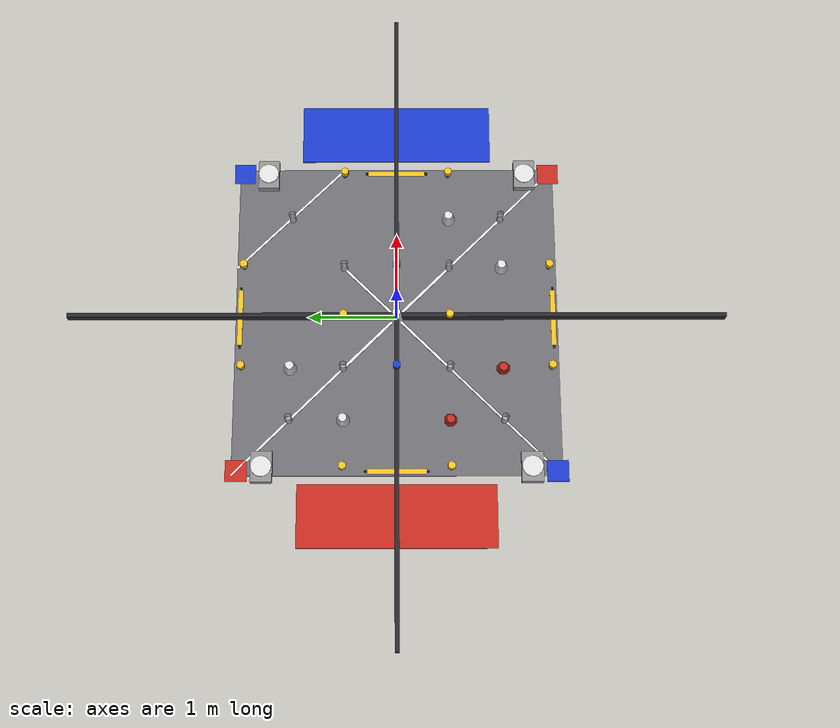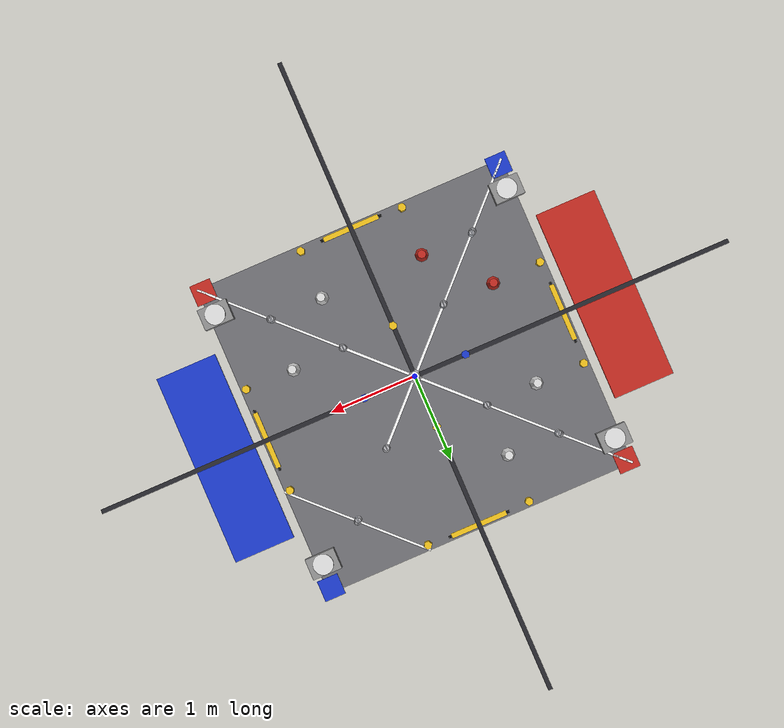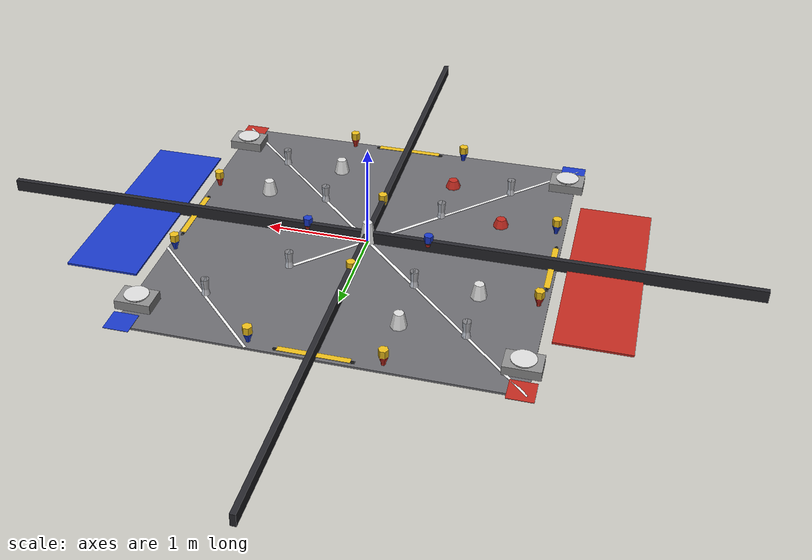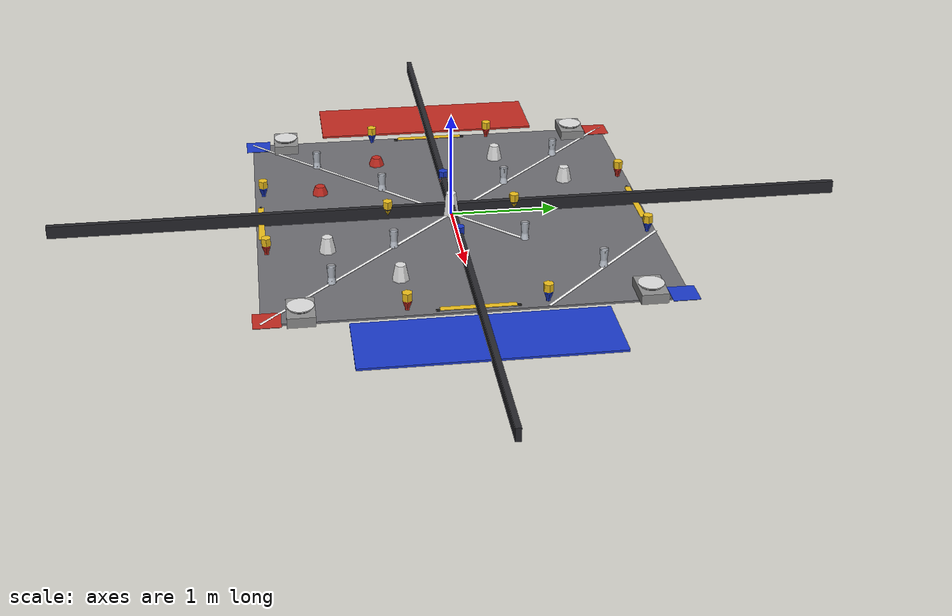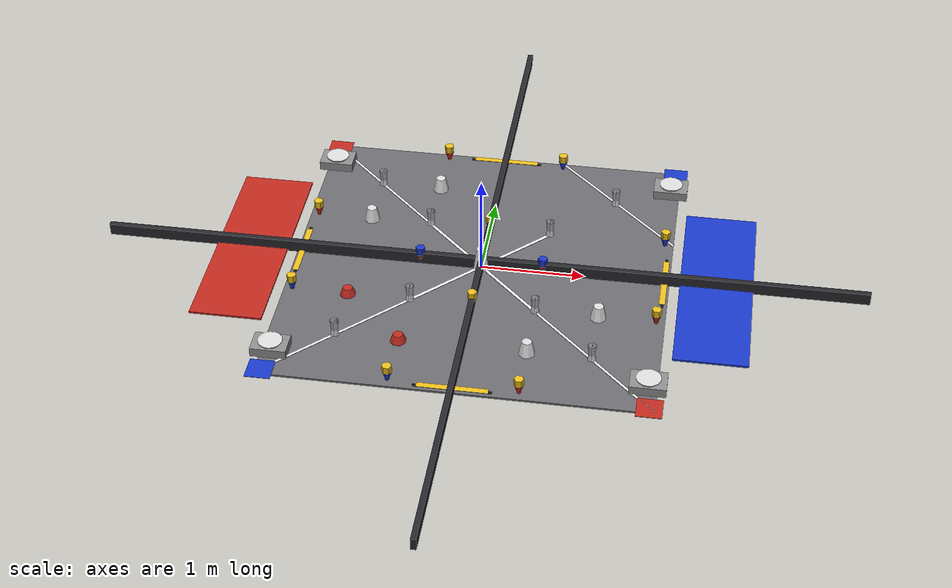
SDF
<sdf version="1.7">
 <world name="override">
  <scene>
   <ambient>0.45 0.45 0.5 1</ambient>
   <background>0.2 0.2 0.25 1</background>
   <shadows>true</shadows>
   <sky><clouds><speed>1</speed></clouds></sky>
  </scene>
  <light name="sun" type="directional">
   <pose>0 0 3 0 0 0</pose>
   <diffuse>0.9 0.9 0.9 1</diffuse>
   <specular>0.2 0.2 0.2 1</specular>
   <direction>-0.5 0.1 -1</direction>
  </light>
  <include><name>override-field</name><uri>model://override-field</uri></include>
  <include><name>goal_center</name><uri>model://goal-center</uri></include>
  <include><name>goal_neutral_1</name><uri>model://goal-neutral</uri><pose>-0.6 1.2 0 0 0 0</pose></include>
  <include><name>goal_neutral_2</name><uri>model://goal-neutral</uri><pose>-1.2 0.6 0 0 0 0</pose></include>
  <include><name>goal_neutral_3</name><uri>model://goal-neutral</uri><pose>1.2 -0.6 0 0 0 0</pose></include>
  <include><name>goal_neutral_4</name><uri>model://goal-neutral</uri><pose>0.6 -1.2 0 0 0 0</pose></include>
  <include><name>goal_red_1</name><uri>model://goal-alliance-red</uri><pose>-1.2 -0.6 0 0 0 0</pose></include>
  <include><name>goal_red_2</name><uri>model://goal-alliance-red</uri><pose>-0.6 -1.2 0 0 0 0</pose></include>
  <include><name>toggle_1</name><uri>model://toggle</uri><pose>0 1.78 0 0 0 0</pose></include>
  <include><name>toggle_2</name><uri>model://toggle</uri><pose>1.78 0 0 0 0 1.5708</pose></include>
  <include><name>toggle_3</name><uri>model://toggle</uri><pose>0 -1.78 0 0 0 0</pose></include>
  <include><name>toggle_4</name><uri>model://toggle</uri><pose>-1.78 0 0 0 0 1.5708</pose></include>
  <include><name>loader_1</name><uri>model://loader</uri><pose>-1.74 1.49 0 0 0 0</pose></include>
  <include><name>loader_2</name><uri>model://loader</uri><pose>-1.74 -1.49 0 0 0 0</pose></include>
  <include><name>loader_3</name><uri>model://loader</uri><pose>1.74 1.49 0 0 0 0</pose></include>
  <include><name>loader_4</name><uri>model://loader</uri><pose>1.74 -1.49 0 0 0 0</pose></include>
  <include><name>pin_ry_1</name><uri>model://pin-ry</uri><pose>-0.6 1.745 0.01 0 0 0</pose></include>
  <include><name>pin_by_1</name><uri>model://pin-by</uri><pose>0.6 1.745 0.01 0 0 0</pose></include>
  <include><name>cup_1</name><uri>model://cup</uri><pose>-1.2 1.2 0.01 0 0 0</pose></include>
  <include><name>cup_2</name><uri>model://cup</uri><pose>1.2 1.2 0.01 0 0 0</pose></include>
  <include><name>pin_ry_2</name><uri>model://pin-ry</uri><pose>-1.745 0.6 0.01 0 0 0</pose></include>
  <include><name>cup_3</name><uri>model://cup</uri><pose>-0.6 0.6 0.01 0 0 0</pose></include>
  <include><name>pin_yy_1</name><uri>model://pin-yy</uri><pose>0 0.6 0.01 0 0 0</pose></include>
  <include><name>cup_4</name><uri>model://cup</uri><pose>0.6 0.6 0.01 0 0 0</pose></include>
  <include><name>pin_by_2</name><uri>model://pin-by</uri><pose>1.745 0.6 0.01 0 0 0</pose></include>
  <include><name>pin_rb_1</name><uri>model://pin-rb</uri><pose>-0.6 0 0.01 0 0 0</pose></include>
  <include><name>pin_rb_2</name><uri>model://pin-rb</uri><pose>0.6 0 0.01 0 0 0</pose></include>
  <include><name>pin_by_3</name><uri>model://pin-by</uri><pose>-1.745 -0.6 0.01 0 0 0</pose></include>
  <include><name>cup_5</name><uri>model://cup</uri><pose>-0.6 -0.6 0.01 0 0 0</pose></include>
  <include><name>pin_yy_2</name><uri>model://pin-yy</uri><pose>0 -0.6 0.01 0 0 0</pose></include>
  <include><name>cup_6</name><uri>model://cup</uri><pose>0.6 -0.6 0.01 0 0 0</pose></include>
  <include><name>pin_ry_3</name><uri>model://pin-ry</uri><pose>1.745 -0.6 0.01 0 0 0</pose></include>
  <include><name>cup_7</name><uri>model://cup</uri><pose>-1.2 -1.2 0.01 0 0 0</pose></include>
  <include><name>cup_8</name><uri>model://cup</uri><pose>1.2 -1.2 0.01 0 0 0</pose></include>
  <include><name>pin_by_4</name><uri>model://pin-by</uri><pose>-0.6 -1.745 0.01 0 0 0</pose></include>
  <include><name>pin_ry_4</name><uri>model://pin-ry</uri><pose>0.6 -1.745 0.01 0 0 0</pose></include>
 </world>
</sdf>

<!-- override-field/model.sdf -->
<sdf version="1.7">
  <model name="override-field">
    <static>true</static>
    <link name="body">
      <pose>0 0 0 0 0 0</pose>
            <visual name="v_0_0">
        <pose>0 0 -0.01 0.0 0.0 0.0</pose>
        <geometry><box><size>3.6576 3.6576 0.02</size></box></geometry>
        <material>
        <ambient>0.42 0.42 0.44 1</ambient>
        <diffuse>0.42 0.42 0.44 1</diffuse>
        <specular>0.1 0.1 0.1 1.0</specular>
        <emissive>0 0 0 1</emissive>
      </material>
      </visual>
      <collision name="c_0_0">
        <pose>0 0 -0.01 0.0 0.0 0.0</pose>
        <geometry><box><size>3.6576 3.6576 0.02</size></box></geometry>
        <surface><friction><ode><mu>0.8</mu><mu2>0.8</mu2></ode></friction></surface>
      </collision>

      <visual name="v_-1.8538_0">
        <pose>-1.8538 0 0.06 0.0 0.0 0.0</pose>
        <geometry><box><size>3.7576 0.05 0.12</size></box></geometry>
        <material>
        <ambient>0.15 0.15 0.17 1</ambient>
        <diffuse>0.15 0.15 0.17 1</diffuse>
        <specular>0.1 0.1 0.1 1.0</specular>
        <emissive>0 0 0 1</emissive>
      </material>
      </visual>
      <collision name="c_-1.8538_0">
        <pose>-1.8538 0 0.06 0.0 0.0 0.0</pose>
        <geometry><box><size>3.7576 0.05 0.12</size></box></geometry>
        <surface><friction><ode><mu>0.8</mu><mu2>0.8</mu2></ode></friction></surface>
      </collision>

      <visual name="v_0_-1.8538">
        <pose>0 -1.8538 0.06 0.0 0.0 0.0</pose>
        <geometry><box><size>0.05 3.7576 0.12</size></box></geometry>
        <material>
        <ambient>0.15 0.15 0.17 1</ambient>
        <diffuse>0.15 0.15 0.17 1</diffuse>
        <specular>0.1 0.1 0.1 1.0</specular>
        <emissive>0 0 0 1</emissive>
      </material>
      </visual>
      <collision name="c_0_-1.8538">
        <pose>0 -1.8538 0.06 0.0 0.0 0.0</pose>
        <geometry><box><size>0.05 3.7576 0.12</size></box></geometry>
        <surface><friction><ode><mu>0.8</mu><mu2>0.8</mu2></ode></friction></surface>
      </collision>

      <visual name="v_1.8538_0">
        <pose>1.8538 0 0.06 0.0 0.0 0.0</pose>
        <geometry><box><size>3.7576 0.05 0.12</size></box></geometry>
        <material>
        <ambient>0.15 0.15 0.17 1</ambient>
        <diffuse>0.15 0.15 0.17 1</diffuse>
        <specular>0.1 0.1 0.1 1.0</specular>
        <emissive>0 0 0 1</emissive>
      </material>
      </visual>
      <collision name="c_1.8538_0">
        <pose>1.8538 0 0.06 0.0 0.0 0.0</pose>
        <geometry><box><size>3.7576 0.05 0.12</size></box></geometry>
        <surface><friction><ode><mu>0.8</mu><mu2>0.8</mu2></ode></friction></surface>
      </collision>

      <visual name="v_0_1.8538">
        <pose>0 1.8538 0.06 0.0 0.0 0.0</pose>
        <geometry><box><size>0.05 3.7576 0.12</size></box></geometry>
        <material>
        <ambient>0.15 0.15 0.17 1</ambient>
        <diffuse>0.15 0.15 0.17 1</diffuse>
        <specular>0.1 0.1 0.1 1.0</specular>
        <emissive>0 0 0 1</emissive>
      </material>
      </visual>
      <collision name="c_0_1.8538">
        <pose>0 1.8538 0.06 0.0 0.0 0.0</pose>
        <geometry><box><size>0.05 3.7576 0.12</size></box></geometry>
        <surface><friction><ode><mu>0.8</mu><mu2>0.8</mu2></ode></friction></surface>
      </collision>

      <visual name="v_-2.2788_0">
        <pose>-2.2788 0 0.01 0.0 0.0 0.0</pose>
        <geometry><box><size>0.7 2.2 0.02</size></box></geometry>
        <material>
        <ambient>0.75 0.16 0.12 1</ambient>
        <diffuse>0.75 0.16 0.12 1</diffuse>
        <specular>0.1 0.1 0.1 1.0</specular>
        <emissive>0 0 0 1</emissive>
      </material>
      </visual>
      <collision name="c_-2.2788_0">
        <pose>-2.2788 0 0.01 0.0 0.0 0.0</pose>
        <geometry><box><size>0.7 2.2 0.02</size></box></geometry>
        <surface><friction><ode><mu>0.8</mu><mu2>0.8</mu2></ode></friction></surface>
      </collision>

      <visual name="v_2.2788_0">
        <pose>2.2788 0 0.01 0.0 0.0 0.0</pose>
        <geometry><box><size>0.7 2.2 0.02</size></box></geometry>
        <material>
        <ambient>0.1 0.22 0.78 1</ambient>
        <diffuse>0.1 0.22 0.78 1</diffuse>
        <specular>0.1 0.1 0.1 1.0</specular>
        <emissive>0 0 0 1</emissive>
      </material>
      </visual>
      <collision name="c_2.2788_0">
        <pose>2.2788 0 0.01 0.0 0.0 0.0</pose>
        <geometry><box><size>0.7 2.2 0.02</size></box></geometry>
        <surface><friction><ode><mu>0.8</mu><mu2>0.8</mu2></ode></friction></surface>
      </collision>

      <visual name="tape_0.3_0.3">
        <pose>0.3 0.3 0.005 0 0 0.7854</pose>
        <geometry><box><size>0.848528137423857 0.03 0.005</size></box></geometry>
        <material>
        <ambient>0.96 0.96 0.96 1</ambient>
        <diffuse>0.96 0.96 0.96 1</diffuse>
        <specular>0.1 0.1 0.1 1.0</specular>
        <emissive>0.05 0.05 0.05 1</emissive>
      </material>
      </visual>

      <visual name="tape_-0.3_0.3">
        <pose>-0.3 0.3 0.005 0 0 -0.7854</pose>
        <geometry><box><size>0.848528137423857 0.03 0.005</size></box></geometry>
        <material>
        <ambient>0.96 0.96 0.96 1</ambient>
        <diffuse>0.96 0.96 0.96 1</diffuse>
        <specular>0.1 0.1 0.1 1.0</specular>
        <emissive>0.05 0.05 0.05 1</emissive>
      </material>
      </visual>

      <visual name="tape_-0.3_-0.3">
        <pose>-0.3 -0.3 0.005 0 0 0.7854</pose>
        <geometry><box><size>0.848528137423857 0.03 0.005</size></box></geometry>
        <material>
        <ambient>0.96 0.96 0.96 1</ambient>
        <diffuse>0.96 0.96 0.96 1</diffuse>
        <specular>0.1 0.1 0.1 1.0</specular>
        <emissive>0.05 0.05 0.05 1</emissive>
      </material>
      </visual>

      <visual name="tape_0.3_-0.3">
        <pose>0.3 -0.3 0.005 0 0 -0.7854</pose>
        <geometry><box><size>0.848528137423857 0.03 0.005</size></box></geometry>
        <material>
        <ambient>0.96 0.96 0.96 1</ambient>
        <diffuse>0.96 0.96 0.96 1</diffuse>
        <specular>0.1 0.1 0.1 1.0</specular>
        <emissive>0.05 0.05 0.05 1</emissive>
      </material>
      </visual>

      <visual name="tape_-1.2144_1.2144">
        <pose>-1.2144 1.2144 0.005 0 0 -0.7854</pose>
        <geometry><box><size>1.7377856254440596 0.025 0.005</size></box></geometry>
        <material>
        <ambient>0.96 0.96 0.96 1</ambient>
        <diffuse>0.96 0.96 0.96 1</diffuse>
        <specular>0.1 0.1 0.1 1.0</specular>
        <emissive>0.05 0.05 0.05 1</emissive>
      </material>
      </visual>

      <visual name="tape_1.2144_1.2144">
        <pose>1.2144 1.2144 0.005 0 0 2.3562</pose>
        <geometry><box><size>1.7377856254440596 0.025 0.005</size></box></geometry>
        <material>
        <ambient>0.96 0.96 0.96 1</ambient>
        <diffuse>0.96 0.96 0.96 1</diffuse>
        <specular>0.1 0.1 0.1 1.0</specular>
        <emissive>0.05 0.05 0.05 1</emissive>
      </material>
      </visual>

      <visual name="tape_-1.2144_-1.2144">
        <pose>-1.2144 -1.2144 0.005 0 0 0.7854</pose>
        <geometry><box><size>1.7377856254440596 0.025 0.005</size></box></geometry>
        <material>
        <ambient>0.96 0.96 0.96 1</ambient>
        <diffuse>0.96 0.96 0.96 1</diffuse>
        <specular>0.1 0.1 0.1 1.0</specular>
        <emissive>0.05 0.05 0.05 1</emissive>
      </material>
      </visual>

      <visual name="tape_1.2144_-1.2144">
        <pose>1.2144 -1.2144 0.005 0 0 2.3562</pose>
        <geometry><box><size>1.7377856254440596 0.025 0.005</size></box></geometry>
        <material>
        <ambient>0.96 0.96 0.96 1</ambient>
        <diffuse>0.96 0.96 0.96 1</diffuse>
        <specular>0.1 0.1 0.1 1.0</specular>
        <emissive>0.05 0.05 0.05 1</emissive>
      </material>
      </visual>

      <visual name="tape_1.773936_1.773936">
        <pose>1.773936 1.773936 0.005 0 0 0.0</pose>
        <geometry><box><size>0.24 0.24 0.005</size></box></geometry>
        <material>
        <ambient>0.1 0.22 0.78 1</ambient>
        <diffuse>0.1 0.22 0.78 1</diffuse>
        <specular>0.1 0.1 0.1 1.0</specular>
        <emissive>0 0 0 1</emissive>
      </material>
      </visual>

      <visual name="tape_1.773936_-1.773936">
        <pose>1.773936 -1.773936 0.005 0 0 0.0</pose>
        <geometry><box><size>0.24 0.24 0.005</size></box></geometry>
        <material>
        <ambient>0.75 0.16 0.12 1</ambient>
        <diffuse>0.75 0.16 0.12 1</diffuse>
        <specular>0.1 0.1 0.1 1.0</specular>
        <emissive>0 0 0 1</emissive>
      </material>
      </visual>

      <visual name="tape_-1.773936_-1.773936">
        <pose>-1.773936 -1.773936 0.005 0 0 0.0</pose>
        <geometry><box><size>0.24 0.24 0.005</size></box></geometry>
        <material>
        <ambient>0.1 0.22 0.78 1</ambient>
        <diffuse>0.1 0.22 0.78 1</diffuse>
        <specular>0.1 0.1 0.1 1.0</specular>
        <emissive>0 0 0 1</emissive>
      </material>
      </visual>

      <visual name="tape_-1.773936_1.773936">
        <pose>-1.773936 1.773936 0.005 0 0 0.0</pose>
        <geometry><box><size>0.24 0.24 0.005</size></box></geometry>
        <material>
        <ambient>0.75 0.16 0.12 1</ambient>
        <diffuse>0.75 0.16 0.12 1</diffuse>
        <specular>0.1 0.1 0.1 1.0</specular>
        <emissive>0 0 0 1</emissive>
      </material>
      </visual>

    </link>
  </model>
</sdf>

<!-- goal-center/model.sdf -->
<sdf version="1.7">
  <model name="goal-center">
    <static>true</static>
    <link name="body">
      <pose>0 0 0 0 0 0</pose>
      <visual name="visual">
        <geometry>
          <mesh>
            <uri>model://goal-center/meshes/goal.stl</uri>
          </mesh>
        </geometry>
        <material>
        <ambient>0.86 0.86 0.86 1</ambient>
        <diffuse>0.86 0.86 0.86 1</diffuse>
        <specular>0.1 0.1 0.1 1.0</specular>
        <emissive>0 0 0 1</emissive>
      </material>
      </visual>
      <visual name="receptacle">
        <pose>0 0 0.2127 0 0 0</pose>
        <geometry>
          <cylinder>
            <radius>0.030</radius>
            <length>0.008</length>
          </cylinder>
        </geometry>
        <material>
        <ambient>0.08 0.08 0.08 1</ambient>
        <diffuse>0.08 0.08 0.08 1</diffuse>
        <specular>0.1 0.1 0.1 1.0</specular>
        <emissive>0 0 0 1</emissive>
      </material>
      </visual>
      <collision name="collision">
        <pose>0 0 0.11135 0 0 0</pose>
        <geometry>
          <cylinder>
            <radius>0.0715</radius>
            <length>0.2227</length>
          </cylinder>
        </geometry>
        <surface>
          <friction>
            <ode>
              <mu>0.8</mu>
              <mu2>0.8</mu2>
            </ode>
          </friction>
        </surface>
      </collision>
    </link>
  </model>
</sdf>

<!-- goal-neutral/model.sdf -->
<sdf version="1.7">
  <model name="goal-neutral">
    <static>true</static>
    <link name="body">
      <pose>0 0 0 0 0 0</pose>
      <visual name="visual">
        <geometry>
          <mesh>
            <uri>model://goal-neutral/meshes/goal.stl</uri>
          </mesh>
        </geometry>
        <material>
        <ambient>0.86 0.86 0.86 1</ambient>
        <diffuse>0.86 0.86 0.86 1</diffuse>
        <specular>0.1 0.1 0.1 1.0</specular>
        <emissive>0 0 0 1</emissive>
      </material>
      </visual>
      <visual name="receptacle">
        <pose>0 0 0.13649999999999998 0 0 0</pose>
        <geometry>
          <cylinder>
            <radius>0.030</radius>
            <length>0.008</length>
          </cylinder>
        </geometry>
        <material>
        <ambient>0.08 0.08 0.08 1</ambient>
        <diffuse>0.08 0.08 0.08 1</diffuse>
        <specular>0.1 0.1 0.1 1.0</specular>
        <emissive>0 0 0 1</emissive>
      </material>
      </visual>
      <collision name="collision">
        <pose>0 0 0.07325 0 0 0</pose>
        <geometry>
          <cylinder>
            <radius>0.0715</radius>
            <length>0.1465</length>
          </cylinder>
        </geometry>
        <surface>
          <friction>
            <ode>
              <mu>0.8</mu>
              <mu2>0.8</mu2>
            </ode>
          </friction>
        </surface>
      </collision>
    </link>
  </model>
</sdf>

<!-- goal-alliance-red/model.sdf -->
<sdf version="1.7">
  <model name="goal-alliance-red">
    <static>true</static>
    <link name="body">
      <pose>0 0 0 0 0 0</pose>
      <visual name="visual">
        <geometry>
          <mesh>
            <uri>model://goal-alliance-red/meshes/goal.stl</uri>
          </mesh>
        </geometry>
        <material>
        <ambient>0.75 0.16 0.12 1</ambient>
        <diffuse>0.75 0.16 0.12 1</diffuse>
        <specular>0.1 0.1 0.1 1.0</specular>
        <emissive>0 0 0 1</emissive>
      </material>
      </visual>
      <visual name="receptacle">
        <pose>0 0 0.07250000000000001 0 0 0</pose>
        <geometry>
          <cylinder>
            <radius>0.030</radius>
            <length>0.008</length>
          </cylinder>
        </geometry>
        <material>
        <ambient>0.08 0.08 0.08 1</ambient>
        <diffuse>0.08 0.08 0.08 1</diffuse>
        <specular>0.1 0.1 0.1 1.0</specular>
        <emissive>0 0 0 1</emissive>
      </material>
      </visual>
      <collision name="collision">
        <pose>0 0 0.04125 0 0 0</pose>
        <geometry>
          <cylinder>
            <radius>0.0715</radius>
            <length>0.0825</length>
          </cylinder>
        </geometry>
        <surface>
          <friction>
            <ode>
              <mu>0.8</mu>
              <mu2>0.8</mu2>
            </ode>
          </friction>
        </surface>
      </collision>
    </link>
  </model>
</sdf>

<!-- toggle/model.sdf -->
<sdf version="1.7">
  <model name="toggle">
    <static>true</static>
    <link name="body">
      <pose>0 0 0 0 0 0</pose>
      <visual name="face_yellow">
        <pose>0 0 0.01507 0 0 0</pose>
        <geometry>
          <box><size>0.656 0.0562 0.004</size></box>
        </geometry>
        <material>
        <ambient>0.92 0.74 0.1 1</ambient>
        <diffuse>0.92 0.74 0.1 1</diffuse>
        <specular>0.1 0.1 0.1 1.0</specular>
        <emissive>0 0 0 1</emissive>
      </material>
      </visual>
      <visual name="face_blue">
        <pose>0 -0.01305 -0.007535 0.5236 0 0</pose>
        <geometry>
          <box><size>0.656 0.0562 0.004</size></box>
        </geometry>
        <material>
        <ambient>0.1 0.22 0.78 1</ambient>
        <diffuse>0.1 0.22 0.78 1</diffuse>
        <specular>0.1 0.1 0.1 1.0</specular>
        <emissive>0 0 0 1</emissive>
      </material>
      </visual>
      <visual name="face_red">
        <pose>0 0.01305 -0.007535 2.618 0 0</pose>
        <geometry>
          <box><size>0.656 0.0562 0.004</size></box>
        </geometry>
        <material>
        <ambient>0.75 0.16 0.12 1</ambient>
        <diffuse>0.75 0.16 0.12 1</diffuse>
        <specular>0.1 0.1 0.1 1.0</specular>
        <emissive>0 0 0 1</emissive>
      </material>
      </visual>
      <visual name="shaft_l">
        <pose>-0.328 0 0 0 1.5708 0</pose>
        <geometry>
          <cylinder><radius>0.015</radius><length>0.07</length></cylinder>
        </geometry>
        <material>
        <ambient>0.08 0.08 0.08 1</ambient>
        <diffuse>0.08 0.08 0.08 1</diffuse>
        <specular>0.1 0.1 0.1 1.0</specular>
        <emissive>0 0 0 1</emissive>
      </material>
      </visual>
      <visual name="shaft_r">
        <pose>0.328 0 0 0 1.5708 0</pose>
        <geometry>
          <cylinder><radius>0.015</radius><length>0.07</length></cylinder>
        </geometry>
        <material>
        <ambient>0.08 0.08 0.08 1</ambient>
        <diffuse>0.08 0.08 0.08 1</diffuse>
        <specular>0.1 0.1 0.1 1.0</specular>
        <emissive>0 0 0 1</emissive>
      </material>
      </visual>
      <collision name="collision">
        <pose>0 0 -0.0075 0 0 0</pose>
        <geometry>
          <box><size>0.656 0.06 0.05</size></box>
        </geometry>
        <surface>
          <friction>
            <ode><mu>0.5</mu><mu2>0.5</mu2></ode>
          </friction>
        </surface>
      </collision>
    </link>
  </model>
</sdf>

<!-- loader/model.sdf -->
<sdf version="1.7">
  <model name="loader">
    <static>true</static>
    <link name="body">
      <pose>0 0 0 0 0 0</pose>
      <visual name="platform">
        <pose>0 0 0.045 0 0 0</pose>
        <geometry>
          <box><size>0.34 0.24 0.09</size></box>
        </geometry>
        <material>
        <ambient>0.55 0.55 0.55 1</ambient>
        <diffuse>0.55 0.55 0.55 1</diffuse>
        <specular>0.1 0.1 0.1 1.0</specular>
        <emissive>0 0 0 1</emissive>
      </material>
      </visual>
      <visual name="opening">
        <pose>0 0 0.1 0 0 0</pose>
        <geometry>
          <cylinder><radius>0.10</radius><length>0.02</length></cylinder>
        </geometry>
        <material>
        <ambient>0.08 0.08 0.08 1</ambient>
        <diffuse>0.08 0.08 0.08 1</diffuse>
        <specular>0.1 0.1 0.1 1.0</specular>
        <emissive>0 0 0 1</emissive>
      </material>
      </visual>
      <visual name="rim">
        <pose>0 0 0.112 0 0 0</pose>
        <geometry>
          <cylinder><radius>0.115</radius><length>0.008</length></cylinder>
        </geometry>
        <material>
        <ambient>0.86 0.86 0.86 1</ambient>
        <diffuse>0.86 0.86 0.86 1</diffuse>
        <specular>0.1 0.1 0.1 1.0</specular>
        <emissive>0 0 0 1</emissive>
      </material>
      </visual>
      <collision name="collision">
        <pose>0 0 0.045 0 0 0</pose>
        <geometry>
          <box><size>0.34 0.24 0.09</size></box>
        </geometry>
        <surface>
          <friction>
            <ode><mu>0.7</mu><mu2>0.7</mu2></ode>
          </friction>
        </surface>
      </collision>
    </link>
  </model>
</sdf>

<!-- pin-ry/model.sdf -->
<sdf version="1.7">
  <model name="pin-ry">
    <static>false</static>
    <link name="link">
      <pose>0 0 0 0 0 0</pose>
      <velocity_decay>
        <linear>0.4</linear>
      </velocity_decay>
      <inertial>
        <pose>0 0 0.0825 0 0 0</pose>
        <mass>0.073</mass>
        <inertia>
          <ixx>0.000206</ixx>
          <iyy>0.000206</iyy>
          <izz>0.000081</izz>
        </inertia>
      </inertial>
      <visual name="bottom_half">
        <geometry>
          <mesh>
            <uri>model://pin-ry/meshes/pin-bottom.stl</uri>
          </mesh>
        </geometry>
        <material>
        <ambient>0.75 0.16 0.12 1</ambient>
        <diffuse>0.75 0.16 0.12 1</diffuse>
        <specular>0.1 0.1 0.1 1.0</specular>
        <emissive>0 0 0 1</emissive>
      </material>
      </visual>
      <visual name="top_half">
        <pose>0 0 0.0907 0 0 0</pose>
        <geometry>
          <mesh>
            <uri>model://pin-ry/meshes/pin-top.stl</uri>
          </mesh>
        </geometry>
        <material>
        <ambient>0.92 0.74 0.1 1</ambient>
        <diffuse>0.92 0.74 0.1 1</diffuse>
        <specular>0.1 0.1 0.1 1.0</specular>
        <emissive>0 0 0 1</emissive>
      </material>
      </visual>
      <collision name="collision">
        <pose>0 0 0.0825 0 0 0</pose>
        <geometry>
          <cylinder>
            <radius>0.047</radius>
            <length>0.165</length>
          </cylinder>
        </geometry>
        <surface>
          <friction>
            <ode>
              <mu>0.6</mu>
              <mu2>0.6</mu2>
            </ode>
          </friction>
        </surface>
      </collision>
    </link>
    <plugin filename="gz-sim-pose-publisher-system" name="gz::sim::systems::PosePublisher">
      <publish_link_pose>false</publish_link_pose>
      <publish_visual_pose>false</publish_visual_pose>
      <publish_collision_pose>false</publish_collision_pose>
      <publish_sensor_pose>false</publish_sensor_pose>
      <publish_model_pose>true</publish_model_pose>
      <publish_nested_model_pose>true</publish_nested_model_pose>
      <use_pose_vector_msg>false</use_pose_vector_msg>
      <update_frequency>20</update_frequency>
      <static_publisher>false</static_publisher>
      <static_update_frequency>1</static_update_frequency>
    </plugin>
    <plugin filename="rollingFriction" name="rolling_friction::RollingFrictionPlugin">
      <link_name>link</link_name>
      <coefficient>0.01</coefficient>
    </plugin>
  </model>
</sdf>

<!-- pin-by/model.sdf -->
<sdf version="1.7">
  <model name="pin-by">
    <static>false</static>
    <link name="link">
      <pose>0 0 0 0 0 0</pose>
      <velocity_decay>
        <linear>0.4</linear>
      </velocity_decay>
      <inertial>
        <pose>0 0 0.0825 0 0 0</pose>
        <mass>0.073</mass>
        <inertia>
          <ixx>0.000206</ixx>
          <iyy>0.000206</iyy>
          <izz>0.000081</izz>
        </inertia>
      </inertial>
      <visual name="bottom_half">
        <geometry>
          <mesh>
            <uri>model://pin-by/meshes/pin-bottom.stl</uri>
          </mesh>
        </geometry>
        <material>
        <ambient>0.1 0.22 0.78 1</ambient>
        <diffuse>0.1 0.22 0.78 1</diffuse>
        <specular>0.1 0.1 0.1 1.0</specular>
        <emissive>0 0 0 1</emissive>
      </material>
      </visual>
      <visual name="top_half">
        <pose>0 0 0.0907 0 0 0</pose>
        <geometry>
          <mesh>
            <uri>model://pin-by/meshes/pin-top.stl</uri>
          </mesh>
        </geometry>
        <material>
        <ambient>0.92 0.74 0.1 1</ambient>
        <diffuse>0.92 0.74 0.1 1</diffuse>
        <specular>0.1 0.1 0.1 1.0</specular>
        <emissive>0 0 0 1</emissive>
      </material>
      </visual>
      <collision name="collision">
        <pose>0 0 0.0825 0 0 0</pose>
        <geometry>
          <cylinder>
            <radius>0.047</radius>
            <length>0.165</length>
          </cylinder>
        </geometry>
        <surface>
          <friction>
            <ode>
              <mu>0.6</mu>
              <mu2>0.6</mu2>
            </ode>
          </friction>
        </surface>
      </collision>
    </link>
    <plugin filename="gz-sim-pose-publisher-system" name="gz::sim::systems::PosePublisher">
      <publish_link_pose>false</publish_link_pose>
      <publish_visual_pose>false</publish_visual_pose>
      <publish_collision_pose>false</publish_collision_pose>
      <publish_sensor_pose>false</publish_sensor_pose>
      <publish_model_pose>true</publish_model_pose>
      <publish_nested_model_pose>true</publish_nested_model_pose>
      <use_pose_vector_msg>false</use_pose_vector_msg>
      <update_frequency>20</update_frequency>
      <static_publisher>false</static_publisher>
      <static_update_frequency>1</static_update_frequency>
    </plugin>
    <plugin filename="rollingFriction" name="rolling_friction::RollingFrictionPlugin">
      <link_name>link</link_name>
      <coefficient>0.01</coefficient>
    </plugin>
  </model>
</sdf>

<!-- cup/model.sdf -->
<sdf version="1.7">
  <model name="cup">
    <static>false</static>
    <link name="link">
      <pose>0 0 0 0 0 0</pose>
      <velocity_decay>
        <linear>0.4</linear>
      </velocity_decay>
      <inertial>
        <pose>0 0 0.08225 0 0 0</pose>
        <mass>0.078</mass>
        <inertia>
          <ixx>0.000235</ixx>
          <iyy>0.000235</iyy>
          <izz>0.000066</izz>
        </inertia>
      </inertial>
      <visual name="body">
        <geometry>
          <mesh>
            <uri>model://cup/meshes/cup.stl</uri>
          </mesh>
        </geometry>
        <material>
        <ambient>0.72 0.72 0.74 1</ambient>
        <diffuse>0.72 0.72 0.74 1</diffuse>
        <specular>0.1 0.1 0.1 1.0</specular>
        <emissive>0 0 0 1</emissive>
      </material>
      </visual>
      <visual name="clear_window">
        <geometry>
          <mesh>
            <uri>model://cup/meshes/cup-window.stl</uri>
          </mesh>
        </geometry>
        <material>
          <ambient>0.85 0.92 1.0 0.4</ambient>
          <diffuse>0.85 0.92 1.0 0.4</diffuse>
          <specular>0.8 0.8 0.8 1.0</specular>
          <emissive>0 0 0 1</emissive>
        </material>
        <transparency>0.65</transparency>
        <cast_shadows>false</cast_shadows>
      </visual>
      <collision name="collision">
        <pose>0 0 0.08225 0 0 0</pose>
        <geometry>
          <cylinder>
            <radius>0.041</radius>
            <length>0.1645</length>
          </cylinder>
        </geometry>
        <surface>
          <friction>
            <ode>
              <mu>0.6</mu>
              <mu2>0.6</mu2>
            </ode>
          </friction>
        </surface>
      </collision>
    </link>
    <plugin filename="gz-sim-pose-publisher-system" name="gz::sim::systems::PosePublisher">
      <publish_link_pose>false</publish_link_pose>
      <publish_visual_pose>false</publish_visual_pose>
      <publish_collision_pose>false</publish_collision_pose>
      <publish_sensor_pose>false</publish_sensor_pose>
      <publish_model_pose>true</publish_model_pose>
      <publish_nested_model_pose>true</publish_nested_model_pose>
      <use_pose_vector_msg>false</use_pose_vector_msg>
      <update_frequency>20</update_frequency>
      <static_publisher>false</static_publisher>
      <static_update_frequency>1</static_update_frequency>
    </plugin>
    <plugin filename="rollingFriction" name="rolling_friction::RollingFrictionPlugin">
      <link_name>link</link_name>
      <coefficient>0.01</coefficient>
    </plugin>
  </model>
</sdf>

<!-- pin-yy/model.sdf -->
<sdf version="1.7">
  <model name="pin-yy">
    <static>false</static>
    <link name="link">
      <pose>0 0 0 0 0 0</pose>
      <velocity_decay>
        <linear>0.4</linear>
      </velocity_decay>
      <inertial>
        <pose>0 0 0.0825 0 0 0</pose>
        <mass>0.073</mass>
        <inertia>
          <ixx>0.000206</ixx>
          <iyy>0.000206</iyy>
          <izz>0.000081</izz>
        </inertia>
      </inertial>
      <visual name="bottom_half">
        <geometry>
          <mesh>
            <uri>model://pin-yy/meshes/pin-bottom.stl</uri>
          </mesh>
        </geometry>
        <material>
        <ambient>0.92 0.74 0.1 1</ambient>
        <diffuse>0.92 0.74 0.1 1</diffuse>
        <specular>0.1 0.1 0.1 1.0</specular>
        <emissive>0 0 0 1</emissive>
      </material>
      </visual>
      <visual name="top_half">
        <pose>0 0 0.0907 0 0 0</pose>
        <geometry>
          <mesh>
            <uri>model://pin-yy/meshes/pin-top.stl</uri>
          </mesh>
        </geometry>
        <material>
        <ambient>0.92 0.74 0.1 1</ambient>
        <diffuse>0.92 0.74 0.1 1</diffuse>
        <specular>0.1 0.1 0.1 1.0</specular>
        <emissive>0 0 0 1</emissive>
      </material>
      </visual>
      <collision name="collision">
        <pose>0 0 0.0825 0 0 0</pose>
        <geometry>
          <cylinder>
            <radius>0.047</radius>
            <length>0.165</length>
          </cylinder>
        </geometry>
        <surface>
          <friction>
            <ode>
              <mu>0.6</mu>
              <mu2>0.6</mu2>
            </ode>
          </friction>
        </surface>
      </collision>
    </link>
    <plugin filename="gz-sim-pose-publisher-system" name="gz::sim::systems::PosePublisher">
      <publish_link_pose>false</publish_link_pose>
      <publish_visual_pose>false</publish_visual_pose>
      <publish_collision_pose>false</publish_collision_pose>
      <publish_sensor_pose>false</publish_sensor_pose>
      <publish_model_pose>true</publish_model_pose>
      <publish_nested_model_pose>true</publish_nested_model_pose>
      <use_pose_vector_msg>false</use_pose_vector_msg>
      <update_frequency>20</update_frequency>
      <static_publisher>false</static_publisher>
      <static_update_frequency>1</static_update_frequency>
    </plugin>
    <plugin filename="rollingFriction" name="rolling_friction::RollingFrictionPlugin">
      <link_name>link</link_name>
      <coefficient>0.01</coefficient>
    </plugin>
  </model>
</sdf>

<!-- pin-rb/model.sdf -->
<sdf version="1.7">
  <model name="pin-rb">
    <static>false</static>
    <link name="link">
      <pose>0 0 0 0 0 0</pose>
      <velocity_decay>
        <linear>0.4</linear>
      </velocity_decay>
      <inertial>
        <pose>0 0 0.0825 0 0 0</pose>
        <mass>0.073</mass>
        <inertia>
          <ixx>0.000206</ixx>
          <iyy>0.000206</iyy>
          <izz>0.000081</izz>
        </inertia>
      </inertial>
      <visual name="bottom_half">
        <geometry>
          <mesh>
            <uri>model://pin-rb/meshes/pin-bottom.stl</uri>
          </mesh>
        </geometry>
        <material>
        <ambient>0.75 0.16 0.12 1</ambient>
        <diffuse>0.75 0.16 0.12 1</diffuse>
        <specular>0.1 0.1 0.1 1.0</specular>
        <emissive>0 0 0 1</emissive>
      </material>
      </visual>
      <visual name="top_half">
        <pose>0 0 0.0907 0 0 0</pose>
        <geometry>
          <mesh>
            <uri>model://pin-rb/meshes/pin-top.stl</uri>
          </mesh>
        </geometry>
        <material>
        <ambient>0.1 0.22 0.78 1</ambient>
        <diffuse>0.1 0.22 0.78 1</diffuse>
        <specular>0.1 0.1 0.1 1.0</specular>
        <emissive>0 0 0 1</emissive>
      </material>
      </visual>
      <collision name="collision">
        <pose>0 0 0.0825 0 0 0</pose>
        <geometry>
          <cylinder>
            <radius>0.047</radius>
            <length>0.165</length>
          </cylinder>
        </geometry>
        <surface>
          <friction>
            <ode>
              <mu>0.6</mu>
              <mu2>0.6</mu2>
            </ode>
          </friction>
        </surface>
      </collision>
    </link>
    <plugin filename="gz-sim-pose-publisher-system" name="gz::sim::systems::PosePublisher">
      <publish_link_pose>false</publish_link_pose>
      <publish_visual_pose>false</publish_visual_pose>
      <publish_collision_pose>false</publish_collision_pose>
      <publish_sensor_pose>false</publish_sensor_pose>
      <publish_model_pose>true</publish_model_pose>
      <publish_nested_model_pose>true</publish_nested_model_pose>
      <use_pose_vector_msg>false</use_pose_vector_msg>
      <update_frequency>20</update_frequency>
      <static_publisher>false</static_publisher>
      <static_update_frequency>1</static_update_frequency>
    </plugin>
    <plugin filename="rollingFriction" name="rolling_friction::RollingFrictionPlugin">
      <link_name>link</link_name>
      <coefficient>0.01</coefficient>
    </plugin>
  </model>
</sdf>
